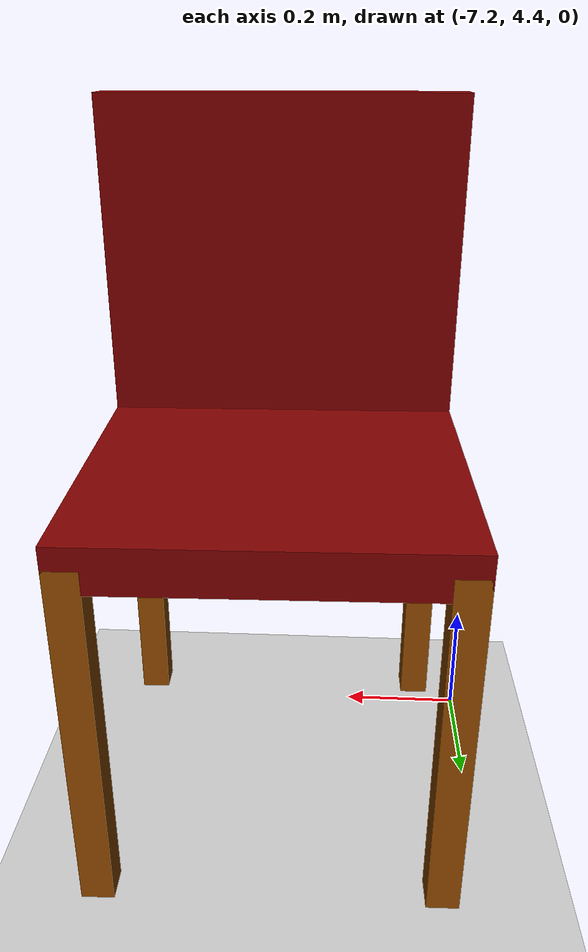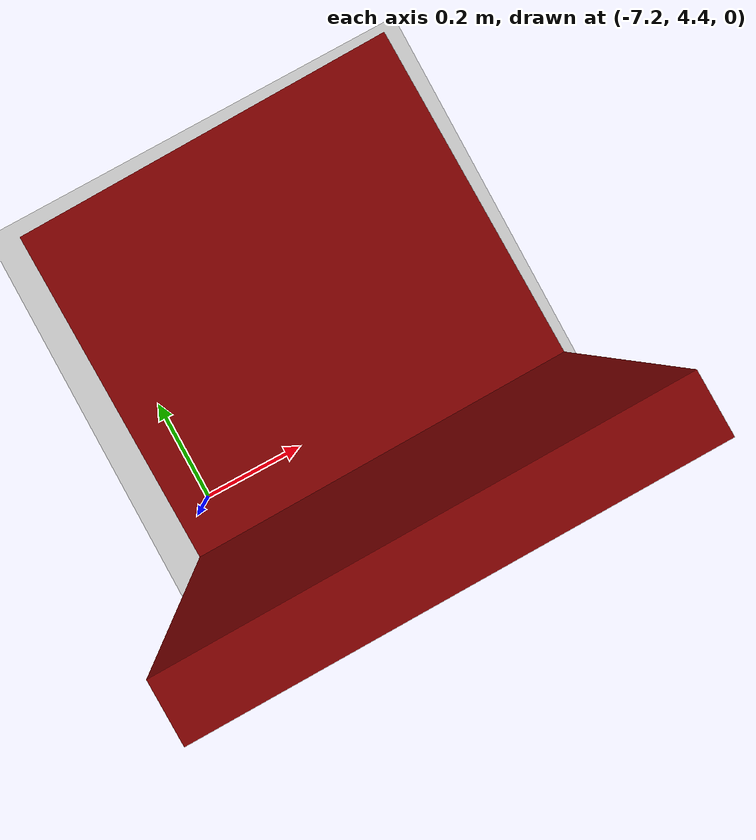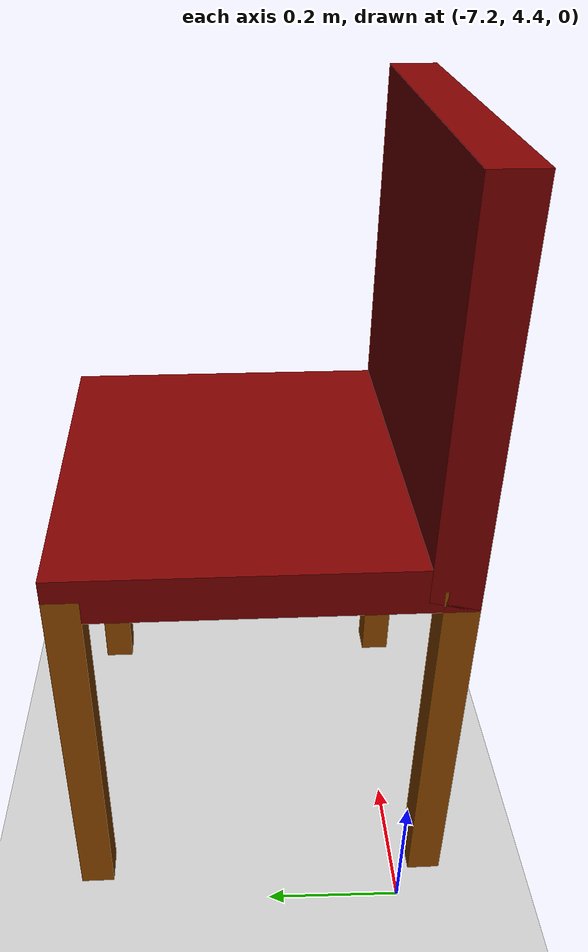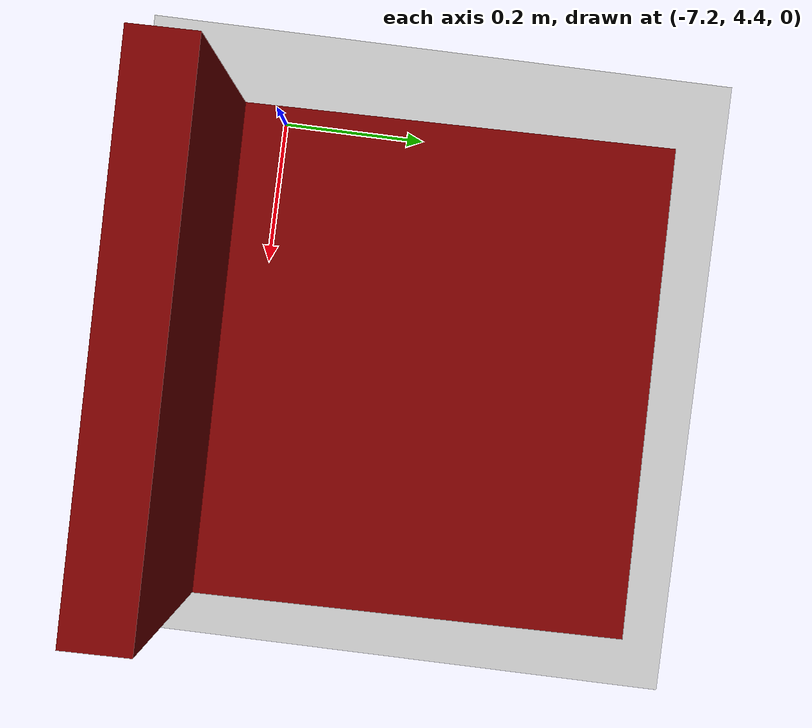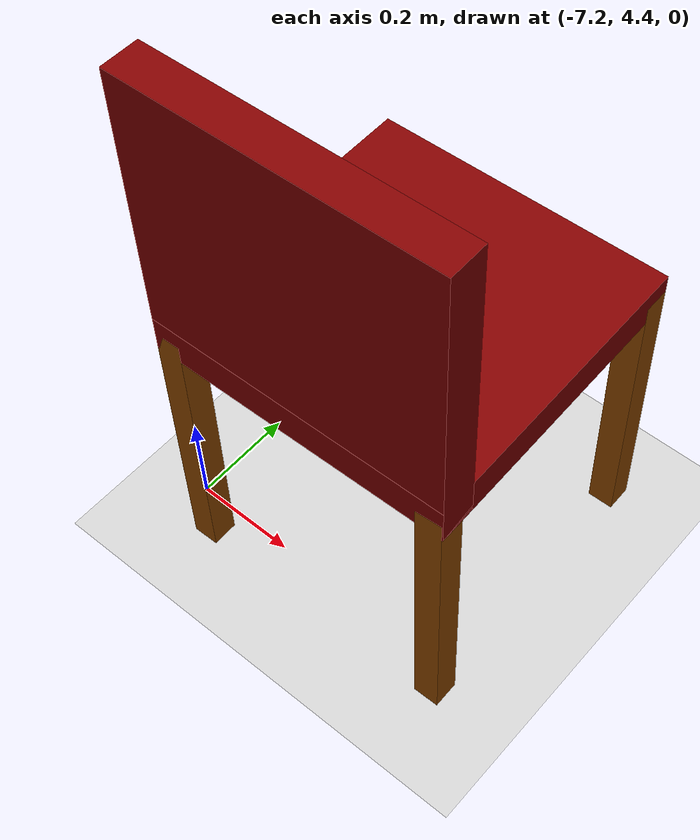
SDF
<sdf version="1.6">
 <world name="default">
  <model name="ground_plane">
   <static>1</static>
   <link name="link">
    <collision name="collision">
     <geometry><plane><normal>0 0 1</normal><size>100 100</size></plane></geometry>
     <surface>
      <contact><collide_bitmask>65535</collide_bitmask></contact>
      <friction><ode><mu>100</mu><mu2>50</mu2></ode></friction>
     </surface>
    </collision>
    <visual name="visual">
     <cast_shadows>0</cast_shadows>
     <geometry><plane><normal>0 0 1</normal><size>100 100</size></plane></geometry>
     <material>
      <script><uri>file://media/materials/scripts/gazebo.material</uri><name>Gazebo/Grey</name></script>
     </material>
    </visual>
   </link>
  </model>
  <model name="chair">
   <link name="link_0">
    <inertial>
     <mass>1</mass>
     <inertia>
      <ixx>0.166667</ixx>
      <ixy>0</ixy>
      <ixz>0</ixz>
      <iyy>0.166667</iyy>
      <iyz>0</iyz>
      <izz>0.166667</izz>
     </inertia>
    </inertial>
    <pose>0.000435 0.041667 0.148333 0 -0 0</pose>
    <visual name="visual">
     <geometry><box><size>0.57 0.57 0.07</size></box></geometry>
     <material>
      <lighting>1</lighting>
      <script><uri>file://media/materials/scripts/gazebo.material</uri><name>Gazebo/Grey</name></script>
      <shader type="vertex"><normal_map>__default__</normal_map></shader>
      <ambient>0.502 0 0 1</ambient>
      <diffuse>0.7 0.7 0.7 1</diffuse>
      <specular>0.01 0.01 0.01 1</specular>
      <emissive>0 0 0 1</emissive>
     </material>
    </visual>
    <collision name="collision">
     <geometry><box><size>0.57 0.57 0.07</size></box></geometry>
     <surface>
      <friction>
       <ode><mu>1</mu><mu2>1</mu2><fdir1>0 0 0</fdir1><slip1>0</slip1><slip2>0</slip2></ode>
       <torsional>
        <coefficient>1</coefficient>
        <patch_radius>0</patch_radius>
        <surface_radius>0</surface_radius>
        <use_patch_radius>1</use_patch_radius>
        <ode><slip>0</slip></ode>
       </torsional>
      </friction>
      <bounce><restitution_coefficient>0</restitution_coefficient><threshold>1e+06</threshold></bounce>
      <contact>
       <collide_without_contact>0</collide_without_contact>
       <collide_without_contact_bitmask>1</collide_without_contact_bitmask>
       <collide_bitmask>1</collide_bitmask>
       <ode>
        <soft_cfm>0</soft_cfm>
        <soft_erp>0.2</soft_erp>
        <kp>1e+13</kp>
        <kd>1</kd>
        <max_vel>0.01</max_vel>
        <min_depth>0</min_depth>
       </ode>
       <bullet>
        <split_impulse>1</split_impulse>
        <split_impulse_penetration_threshold>-0.01</split_impulse_penetration_threshold>
        <soft_cfm>0</soft_cfm>
        <soft_erp>0.2</soft_erp>
        <kp>1e+13</kp>
        <kd>1</kd>
       </bullet>
      </contact>
     </surface>
    </collision>
   </link>
   <link name="link_1">
    <inertial>
     <mass>1</mass>
     <inertia>
      <ixx>0.166667</ixx>
      <ixy>0</ixy>
      <ixz>0</ixz>
      <iyy>0.166667</iyy>
      <iyz>0</iyz>
      <izz>0.166667</izz>
     </inertia>
    </inertial>
    <pose>0.000435 -0.208333 0.398333 0 -0 0</pose>
    <visual name="visual">
     <geometry><box><size>0.57 0.07 0.57</size></box></geometry>
     <material>
      <lighting>1</lighting>
      <script><uri>file://media/materials/scripts/gazebo.material</uri><name>Gazebo/Grey</name></script>
      <shader type="vertex"><normal_map>__default__</normal_map></shader>
      <ambient>0.502 0 0 1</ambient>
      <diffuse>0.7 0.7 0.7 1</diffuse>
      <specular>0.01 0.01 0.01 1</specular>
      <emissive>0 0 0 1</emissive>
     </material>
    </visual>
    <collision name="collision">
     <geometry><box><size>0.57 0.07 0.57</size></box></geometry>
     <surface>
      <friction>
       <ode><mu>1</mu><mu2>1</mu2><fdir1>0 0 0</fdir1><slip1>0</slip1><slip2>0</slip2></ode>
       <torsional>
        <coefficient>1</coefficient>
        <patch_radius>0</patch_radius>
        <surface_radius>0</surface_radius>
        <use_patch_radius>1</use_patch_radius>
        <ode><slip>0</slip></ode>
       </torsional>
      </friction>
      <bounce><restitution_coefficient>0</restitution_coefficient><threshold>1e+06</threshold></bounce>
      <contact>
       <collide_without_contact>0</collide_without_contact>
       <collide_without_contact_bitmask>1</collide_without_contact_bitmask>
       <collide_bitmask>1</collide_bitmask>
       <ode>
        <soft_cfm>0</soft_cfm>
        <soft_erp>0.2</soft_erp>
        <kp>1e+13</kp>
        <kd>1</kd>
        <max_vel>0.01</max_vel>
        <min_depth>0</min_depth>
       </ode>
       <bullet>
        <split_impulse>1</split_impulse>
        <split_impulse_penetration_threshold>-0.01</split_impulse_penetration_threshold>
        <soft_cfm>0</soft_cfm>
        <soft_erp>0.2</soft_erp>
        <kp>1e+13</kp>
        <kd>1</kd>
       </bullet>
      </contact>
     </surface>
    </collision>
   </link>
   <link name="link_2">
    <inertial>
     <mass>1</mass>
     <inertia>
      <ixx>0.166667</ixx>
      <ixy>0</ixy>
      <ixz>0</ixz>
      <iyy>0.166667</iyy>
      <iyz>0</iyz>
      <izz>0.166667</izz>
     </inertia>
    </inertial>
    <pose>0.257825 -0.218333 -0.136667 0 -0 0</pose>
    <visual name="visual">
     <geometry><box><size>0.05 0.05 0.57</size></box></geometry>
     <material>
      <lighting>1</lighting>
      <script><uri>file://media/materials/scripts/gazebo.material</uri><name>Gazebo/Grey</name></script>
      <shader type="vertex"><normal_map>__default__</normal_map></shader>
      <ambient>0.588 0.294 0 1</ambient>
      <diffuse>0.7 0.7 0.7 1</diffuse>
      <specular>0.01 0.01 0.01 1</specular>
      <emissive>0 0 0 1</emissive>
     </material>
    </visual>
    <collision name="collision">
     <geometry><box><size>0.05 0.05 0.57</size></box></geometry>
     <surface>
      <friction>
       <ode><mu>1</mu><mu2>1</mu2><fdir1>0 0 0</fdir1><slip1>0</slip1><slip2>0</slip2></ode>
       <torsional>
        <coefficient>1</coefficient>
        <patch_radius>0</patch_radius>
        <surface_radius>0</surface_radius>
        <use_patch_radius>1</use_patch_radius>
        <ode><slip>0</slip></ode>
       </torsional>
      </friction>
      <bounce><restitution_coefficient>0</restitution_coefficient><threshold>1e+06</threshold></bounce>
      <contact>
       <collide_without_contact>0</collide_without_contact>
       <collide_without_contact_bitmask>1</collide_without_contact_bitmask>
       <collide_bitmask>1</collide_bitmask>
       <ode>
        <soft_cfm>0</soft_cfm>
        <soft_erp>0.2</soft_erp>
        <kp>1e+13</kp>
        <kd>1</kd>
        <max_vel>0.01</max_vel>
        <min_depth>0</min_depth>
       </ode>
       <bullet>
        <split_impulse>1</split_impulse>
        <split_impulse_penetration_threshold>-0.01</split_impulse_penetration_threshold>
        <soft_cfm>0</soft_cfm>
        <soft_erp>0.2</soft_erp>
        <kp>1e+13</kp>
        <kd>1</kd>
       </bullet>
      </contact>
     </surface>
    </collision>
   </link>
   <link name="link_2_clone">
    <inertial>
     <mass>1</mass>
     <inertia>
      <ixx>0.166667</ixx>
      <ixy>0</ixy>
      <ixz>0</ixz>
      <iyy>0.166667</iyy>
      <iyz>0</iyz>
      <izz>0.166667</izz>
     </inertia>
    </inertial>
    <pose>-0.259565 -0.218333 -0.136667 0 -0 0</pose>
    <visual name="visual">
     <geometry><box><size>0.05 0.05 0.57</size></box></geometry>
     <material>
      <lighting>1</lighting>
      <script><uri>file://media/materials/scripts/gazebo.material</uri><name>Gazebo/Grey</name></script>
      <shader type="vertex"><normal_map>__default__</normal_map></shader>
      <ambient>0.588 0.294 0 1</ambient>
      <diffuse>0.7 0.7 0.7 1</diffuse>
      <specular>0.01 0.01 0.01 1</specular>
      <emissive>0 0 0 1</emissive>
     </material>
    </visual>
    <collision name="collision">
     <geometry><box><size>0.05 0.05 0.57</size></box></geometry>
     <surface>
      <friction>
       <ode><mu>1</mu><mu2>1</mu2><fdir1>0 0 0</fdir1><slip1>0</slip1><slip2>0</slip2></ode>
       <torsional>
        <coefficient>1</coefficient>
        <patch_radius>0</patch_radius>
        <surface_radius>0</surface_radius>
        <use_patch_radius>1</use_patch_radius>
        <ode><slip>0</slip></ode>
       </torsional>
      </friction>
      <bounce><restitution_coefficient>0</restitution_coefficient><threshold>1e+06</threshold></bounce>
      <contact>
       <collide_without_contact>0</collide_without_contact>
       <collide_without_contact_bitmask>1</collide_without_contact_bitmask>
       <collide_bitmask>1</collide_bitmask>
       <ode>
        <soft_cfm>0</soft_cfm>
        <soft_erp>0.2</soft_erp>
        <kp>1e+13</kp>
        <kd>1</kd>
        <max_vel>0.01</max_vel>
        <min_depth>0</min_depth>
       </ode>
       <bullet>
        <split_impulse>1</split_impulse>
        <split_impulse_penetration_threshold>-0.01</split_impulse_penetration_threshold>
        <soft_cfm>0</soft_cfm>
        <soft_erp>0.2</soft_erp>
        <kp>1e+13</kp>
        <kd>1</kd>
       </bullet>
      </contact>
     </surface>
    </collision>
   </link>
   <link name="link_2_clone_clone">
    <inertial>
     <mass>1</mass>
     <inertia>
      <ixx>0.166667</ixx>
      <ixy>0</ixy>
      <ixz>0</ixz>
      <iyy>0.166667</iyy>
      <iyz>0</iyz>
      <izz>0.166667</izz>
     </inertia>
    </inertial>
    <pose>-0.259565 0.301667 -0.136667 0 -0 0</pose>
    <visual name="visual">
     <geometry><box><size>0.05 0.05 0.57</size></box></geometry>
     <material>
      <lighting>1</lighting>
      <script><uri>file://media/materials/scripts/gazebo.material</uri><name>Gazebo/Grey</name></script>
      <shader type="vertex"><normal_map>__default__</normal_map></shader>
      <ambient>0.588 0.294 0 1</ambient>
      <diffuse>0.7 0.7 0.7 1</diffuse>
      <specular>0.01 0.01 0.01 1</specular>
      <emissive>0 0 0 1</emissive>
     </material>
    </visual>
    <collision name="collision">
     <geometry><box><size>0.05 0.05 0.57</size></box></geometry>
     <surface>
      <friction>
       <ode><mu>1</mu><mu2>1</mu2><fdir1>0 0 0</fdir1><slip1>0</slip1><slip2>0</slip2></ode>
       <torsional>
        <coefficient>1</coefficient>
        <patch_radius>0</patch_radius>
        <surface_radius>0</surface_radius>
        <use_patch_radius>1</use_patch_radius>
        <ode><slip>0</slip></ode>
       </torsional>
      </friction>
      <bounce><restitution_coefficient>0</restitution_coefficient><threshold>1e+06</threshold></bounce>
      <contact>
       <collide_without_contact>0</collide_without_contact>
       <collide_without_contact_bitmask>1</collide_without_contact_bitmask>
       <collide_bitmask>1</collide_bitmask>
       <ode>
        <soft_cfm>0</soft_cfm>
        <soft_erp>0.2</soft_erp>
        <kp>1e+13</kp>
        <kd>1</kd>
        <max_vel>0.01</max_vel>
        <min_depth>0</min_depth>
       </ode>
       <bullet>
        <split_impulse>1</split_impulse>
        <split_impulse_penetration_threshold>-0.01</split_impulse_penetration_threshold>
        <soft_cfm>0</soft_cfm>
        <soft_erp>0.2</soft_erp>
        <kp>1e+13</kp>
        <kd>1</kd>
       </bullet>
      </contact>
     </surface>
    </collision>
   </link>
   <link name="link_2_clone_clone_0">
    <inertial>
     <mass>1</mass>
     <inertia>
      <ixx>0.166667</ixx>
      <ixy>0</ixy>
      <ixz>0</ixz>
      <iyy>0.166667</iyy>
      <iyz>0</iyz>
      <izz>0.166667</izz>
     </inertia>
    </inertial>
    <pose>0.260435 0.301667 -0.136667 0 -0 0</pose>
    <visual name="visual">
     <geometry><box><size>0.05 0.05 0.57</size></box></geometry>
     <material>
      <lighting>1</lighting>
      <script><uri>file://media/materials/scripts/gazebo.material</uri><name>Gazebo/Grey</name></script>
      <shader type="vertex"><normal_map>__default__</normal_map></shader>
      <ambient>0.588 0.294 0 1</ambient>
      <diffuse>0.7 0.7 0.7 1</diffuse>
      <specular>0.01 0.01 0.01 1</specular>
      <emissive>0 0 0 1</emissive>
     </material>
    </visual>
    <collision name="collision">
     <geometry><box><size>0.05 0.05 0.57</size></box></geometry>
     <surface>
      <friction>
       <ode><mu>1</mu><mu2>1</mu2><fdir1>0 0 0</fdir1><slip1>0</slip1><slip2>0</slip2></ode>
       <torsional>
        <coefficient>1</coefficient>
        <patch_radius>0</patch_radius>
        <surface_radius>0</surface_radius>
        <use_patch_radius>1</use_patch_radius>
        <ode><slip>0</slip></ode>
       </torsional>
      </friction>
      <bounce><restitution_coefficient>0</restitution_coefficient><threshold>1e+06</threshold></bounce>
      <contact>
       <collide_without_contact>0</collide_without_contact>
       <collide_without_contact_bitmask>1</collide_without_contact_bitmask>
       <collide_bitmask>1</collide_bitmask>
       <ode>
        <soft_cfm>0</soft_cfm>
        <soft_erp>0.2</soft_erp>
        <kp>1e+13</kp>
        <kd>1</kd>
        <max_vel>0.01</max_vel>
        <min_depth>0</min_depth>
       </ode>
       <bullet>
        <split_impulse>1</split_impulse>
        <split_impulse_penetration_threshold>-0.01</split_impulse_penetration_threshold>
        <soft_cfm>0</soft_cfm>
        <soft_erp>0.2</soft_erp>
        <kp>1e+13</kp>
        <kd>1</kd>
       </bullet>
      </contact>
     </surface>
    </collision>
   </link>
   <joint name="link_0_JOINT_0" type="fixed">
    <parent>link_0</parent>
    <child>link_1</child>
    <physics>
     <ode><limit><cfm>0</cfm><erp>0.2</erp></limit><suspension><cfm>0</cfm><erp>0.2</erp></suspension></ode>
    </physics>
   </joint>
   <joint name="link_0_JOINT_4" type="fixed">
    <parent>link_0</parent>
    <child>link_2</child>
    <physics>
     <ode><limit><cfm>0</cfm><erp>0.2</erp></limit><suspension><cfm>0</cfm><erp>0.2</erp></suspension></ode>
    </physics>
   </joint>
   <joint name="link_0_JOINT_5" type="fixed">
    <parent>link_0</parent>
    <child>link_2_clone</child>
    <physics>
     <ode><limit><cfm>0</cfm><erp>0.2</erp></limit><suspension><cfm>0</cfm><erp>0.2</erp></suspension></ode>
    </physics>
   </joint>
   <joint name="link_0_JOINT_6" type="fixed">
    <parent>link_0</parent>
    <child>link_2_clone_clone_0</child>
    <physics>
     <ode><limit><cfm>0</cfm><erp>0.2</erp></limit><suspension><cfm>0</cfm><erp>0.2</erp></suspension></ode>
    </physics>
   </joint>
   <joint name="link_0_JOINT_7" type="fixed">
    <parent>link_0</parent>
    <child>link_2_clone_clone</child>
    <physics>
     <ode><limit><cfm>0</cfm><erp>0.2</erp></limit><suspension><cfm>0</cfm><erp>0.2</erp></suspension></ode>
    </physics>
   </joint>
   <static>0</static>
   <pose>-6.87287 4.57288 0.421667 1e-06 2e-06 0.01631</pose>
  </model>
 </world>
</sdf>
